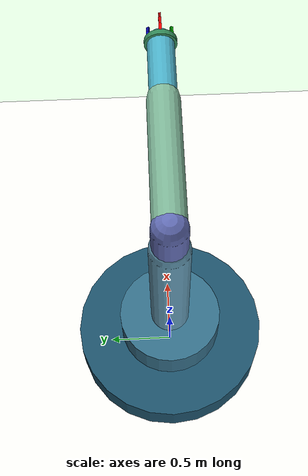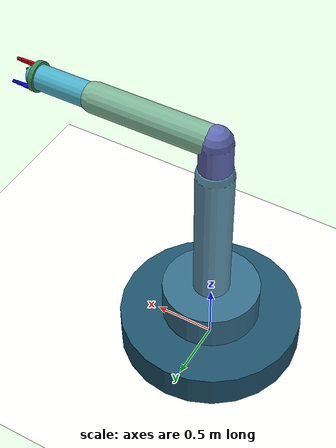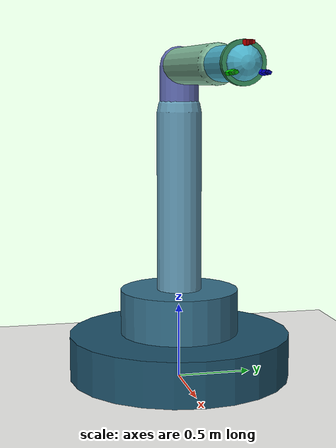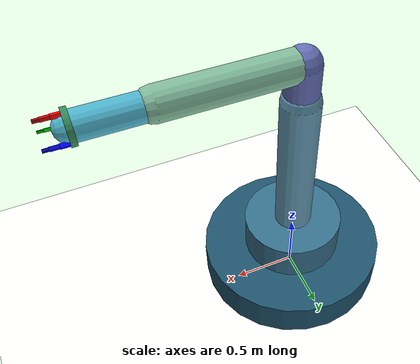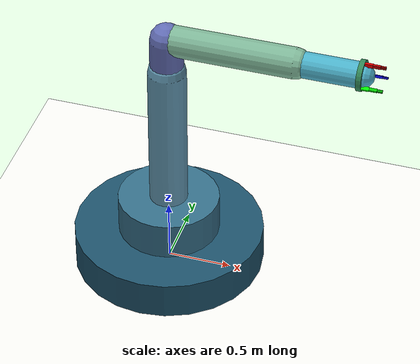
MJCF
<mujoco model="4_link_3_finger_arm">
    <compiler autolimits="true" />

    <asset>
        <texture type="skybox" name="sky" builtin="flat" rgb1="0.75 0.9 1" rgb2="0.75 0.9 1"
            width="512" height="512" />
        <material name="sky_mat" texture="sky" />
    </asset>

    <option gravity="0 0 0" />
    <worldbody>
        <geom type="plane" size="10 10 1" rgba="0.969 0.969 0.957 1" />
        <camera name="main" pos="3 3 4" />

        <body name="base-body" pos="0 0 0.01">
            <geom type="cylinder" size="0.75 0.3" fromto="0 0 0 0 0 0.3" rgba="0.114 0.322 0.42 1" />

            <body name="base-body-p1" pos="0 0 0.3">
                <joint name="joint-1" type="hinge" axis="0 0 1" />
                <geom type="cylinder" size="0.4 0.15" fromto="0 0 0 0 0 0.3"
                    rgba="0.208 0.435 0.541 1" />

                <body name="base-body-p2" pos="0 0 0.3">
                    <joint name="joint-2" type="hinge" axis="0 0 1" />
                    <geom type="capsule" size="0.15" fromto="0 0 0 0 0 1.2"
                        rgba="0.396 0.616 0.722 1" />

                    <body name="base-body-p4" pos="0 0 0.3">
                        <joint name="joint-3" type="hinge" axis="0 1 0" />
                        <geom type="capsule" size="0.13" fromto="0 0 0 0 0 1.2"
                            rgba="0.39 0.433 0.72 1" />

                        <body name="base-body-p5" pos="0 0 1.2">
                            <joint name="joint-4" type="hinge" axis="0 1 0" />
                            <geom type="capsule" size="0.12" fromto="0 0 0 1.0 0 0"
                                rgba="0.5 0.72 0.6 1" />

                            <body name="base-body-p6" pos="1.0 0 0">
                                <joint name="joint-5" type="hinge" axis="0 1 0" />
                                <geom type="capsule" size="0.1" fromto="0 0 0 0.5 0 0"
                                    rgba="0.3 0.702 0.8 1" />

                                <body name="palm-body" pos="0.5 0 0">
                                    <geom type="cylinder" size="0.12 0.02" euler="0 90 0"
                                        rgba="0.2 0.54 0.35 1" />

                                    <body name="f1_proximal" pos="0 0 0.10" euler="0 0 0">
                                        <joint name="f1_j1" type="hinge" axis="0 0 -1" range="0 90" />
                                        <geom type="box" size="0.04 0.01 0.015" pos="0.04 0 0"
                                            rgba="1 0 0 1" />

                                        <body name="f1_intermediate" pos="0.08 0 0">
                                            <joint name="f1_j2" type="hinge" axis="0 0 -1"
                                                range="0 90" />
                                            <geom type="box" size="0.03 0.01 0.012" pos="0.03 0 0"
                                                rgba="0.8 0 0 1" />

                                            <body name="f1_distal" pos="0.06 0 0">
                                                <joint name="f1_j3" type="hinge" axis="0 0 -1"
                                                    range="0 90" />
                                                <geom type="box" size="0.02 0.008 0.01"
                                                    pos="0.02 0 0"
                                                    rgba="0.6 0 0 1" />
                                            </body>
                                        </body>
                                    </body>

                                    <body name="f2_proximal" pos="0 -0.086 -0.05" euler="120 0 0">
                                        <joint name="f2_j1" type="hinge" axis="0 0 -1" range="0 90" />
                                        <geom type="box" size="0.04 0.01 0.015" pos="0.04 0 0"
                                            rgba="0 1 0 1" />

                                        <body name="f2_intermediate" pos="0.08 0 0">
                                            <joint name="f2_j2" type="hinge" axis="0 0 -1"
                                                range="0 90" />
                                            <geom type="box" size="0.03 0.01 0.012" pos="0.03 0 0"
                                                rgba="0 0.8 0 1" />

                                            <body name="f2_distal" pos="0.06 0 0">
                                                <joint name="f2_j3" type="hinge" axis="0 0 -1"
                                                    range="0 90" />
                                                <geom type="box" size="0.02 0.008 0.01"
                                                    pos="0.02 0 0"
                                                    rgba="0 0.6 0 1" />
                                            </body>
                                        </body>
                                    </body>

                                    <body name="f3_proximal" pos="0 0.086 -0.05" euler="-120 0 0">
                                        <joint name="f3_j1" type="hinge" axis="0 0 -1" range="0 90" />
                                        <geom type="box" size="0.04 0.01 0.015" pos="0.04 0 0"
                                            rgba="0 0 1 1" />

                                        <body name="f3_intermediate" pos="0.08 0 0">
                                            <joint name="f3_j2" type="hinge" axis="0 0 -1"
                                                range="0 90" />
                                            <geom type="box" size="0.03 0.01 0.012" pos="0.03 0 0"
                                                rgba="0 0 0.8 1" />

                                            <body name="f3_distal" pos="0.06 0 0">
                                                <joint name="f3_j3" type="hinge" axis="0 0 -1"
                                                    range="0 90" />
                                                <geom type="box" size="0.02 0.008 0.01"
                                                    pos="0.02 0 0"
                                                    rgba="0 0 0.6 1" />
                                            </body>
                                        </body>
                                    </body>

                                </body>
                            </body>
                        </body>
                    </body>
                </body>
            </body>
        </body>
    </worldbody>
</mujoco>
